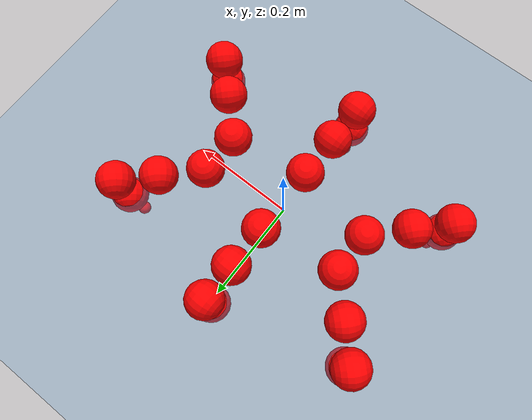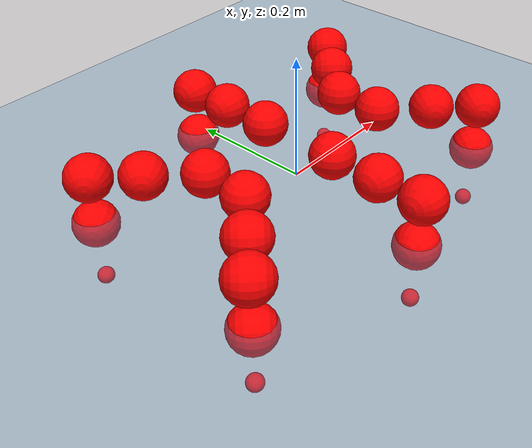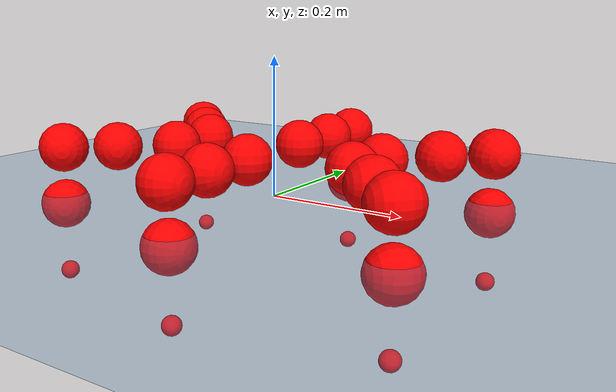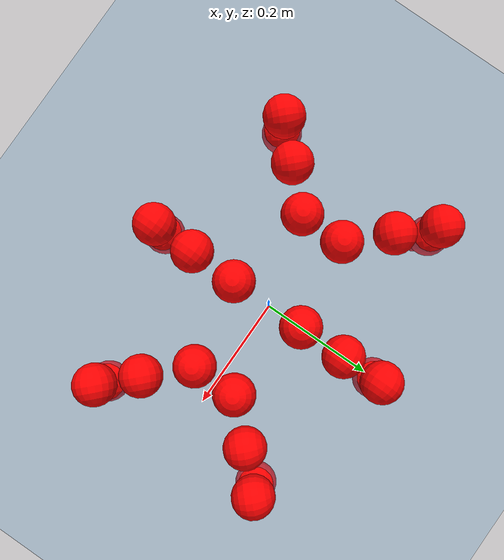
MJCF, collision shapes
<mujoco model="Golem">
  <compiler angle="radian" assetdir="assets" balanceinertia="true" inertiafromgeom="false"/>

  <option timestep="0.005" density="1.2" viscosity="2e-05"/>

  <size nkey="1"/>

  <visual>
    <quality shadowsize="8192"/>
    <map shadowclip="0.5"/>
  </visual>

  <default>
    <default class="/">
      <joint armature="0.01" damping="0.01" frictionloss="0.01"/>
      <geom contype="0" conaffinity="0" group="1" solref="-1000 -80"/>
      <site size="0.01 0.005 0.005" group="5"/>
      <general forcelimited="true" biastype="affine" gainprm="25" biasprm="0 -25 -0.5"/>
      <default class="visual">
        <geom type="mesh" group="2"/>
      </default>
      <default class="collision">
        <geom group="3"/>
      </default>
      <default class="foot">
        <geom size="0.01 0 0" condim="6" group="4" priority="1" solimp="0.015 1 0.01"/>
      </default>
      <default class="reward_collision_sphere">
        <geom group="5" rgba="1 0 0 1"/>
      </default>
    </default>
  </default>

  <asset>
    <texture type="skybox" colorspace="auto" name="//unnamed_texture_0" builtin="gradient" rgb1="0.95 0.95 0.95" rgb2="0.95 0.95 0.95" width="100" height="600"/>
    <texture type="2d" colorspace="auto" name="texplane" builtin="checker" rgb1="0.345 0.575 0.748" rgb2="0.345 0.575 0.748" markrgb="1 1 1" width="512" height="512"/>
    <material name="MatPlane" class="/" texture="texplane" texuniform="true" texrepeat="2 2" specular="0.9"/>
    <mesh name="body" class="/" file="body.stl" scale="0.001 0.001 0.001"/>
    <mesh name="coxa" class="/" file="coxa.stl" scale="0.001 0.001 0.001"/>
    <mesh name="femur" class="/" file="femur.stl" scale="0.001 0.001 0.001"/>
    <mesh name="tibia" class="/" file="tibia.stl" scale="0.001 0.001 0.001"/>
    <mesh name="tarsus" class="/" file="tarsus.stl" scale="0.001 0.001 0.001"/>
  </asset>

  <worldbody>
    <geom name="floor" class="/" size="100 100 0.125" type="plane" group="0" material="MatPlane"/>
    <light name="toplight_shadow" class="/" pos="0 0 5" dir="0.0990148 0.0990148 -0.990148" type="directional" ambient="0.04 0.04 0.04" diffuse="0.55 0.55 0.55" specular="0.12 0.12 0.12"/>
    <light name="toplight_fill" class="/" pos="0 0 5" dir="0.0990148 0.0990148 -0.990148" type="directional" castshadow="false" ambient="0.04 0.04 0.04" diffuse="0.3 0.3 0.3" specular="0.08 0.08 0.08"/>
    <body name="trunk" pos="1.18273e-05 0.000141534 -0.000372618" quat="1 0.000647228 -0.000106787 0.000187276">
      <inertial pos="-0.000494852 0.00067888 -0.00361944" quat="0.999987 0.0018328 -0.00295791 0.00383203" mass="2.6281" diaginertia="0.00854844 0.00185605 0.0105682"/>
      <joint name="//unnamed_joint_0" type="free"/>
      <geom name="//unnamed_geom_1" class="/" pos="0 0 0.0647077" quat="1 0 0 0" type="mesh" rgba="0.9 0.9 0.9 1" mesh="body"/>
      <site name="imu" class="/" pos="0.13018 0.00764583 0.11307" size="0.00896745"/>
      <camera name="track" class="/" pos="0 -1.42414 0" quat="0.707107 0.707107 0 0" mode="trackcom"/>
      <camera name="ego_camera" class="/" pos="0.125724 0 0.101106" quat="-0.5 -0.5 0.5 0.5"/>
      <body name="coxa_RR" pos="-0.172254 -0.0594421 0.0657721" quat="0.382612 -0.000550335 0.00110564 -0.923908">
        <inertial pos="0.00107469 -0.00102111 0.000471338" quat="0.999992 0.000956191 -0.00201362 -0.00339438" mass="0.149041" diaginertia="0.00866214 0.00189675 0.0110201"/>
        <joint name="coxa_joint_RR" class="/" pos="0 0 0" axis="-0.00619563 0.00545081 -0.999966" range="-3.15606 3.15957" armature="0.00879998" damping="0" frictionloss="0.00852175"/>
        <geom name="//unnamed_geom_2" class="/" type="mesh" rgba="0.2 0.2 0.2 1" mesh="coxa"/>
        <geom name="//unnamed_geom_3" class="reward_collision_sphere" size="0.0358698" pos="-0.0290133 0 0"/>
        <body name="femur_RR" pos="0.0572806 0.000811867 0.000769913" quat="0.500822 -0.500199 0.499293 0.499684">
          <inertial pos="8.76149e-05 0.00222623 -0.000280585" quat="0.999999 -0.000404148 0.00123647 0.000248553" mass="0.14192" diaginertia="0.00827097 0.00180444 0.0103457"/>
          <joint name="femur_joint_RR" class="/" pos="0 0 0" axis="0.000306942 0.000788001 -1" range="-3.16012 3.15982" armature="0.00966143" damping="0" frictionloss="0.00902133"/>
          <geom name="//unnamed_geom_4" class="/" type="mesh" rgba="0.9 0.9 0.9 1" mesh="femur"/>
          <geom name="//unnamed_geom_5" class="reward_collision_sphere" size="0.0358698"/>
          <body name="tibia_RR" pos="-0.000681216 -0.0780202 -0.000420783" quat="-7.47264e-06 1 8.93651e-05 -4.61859e-06">
            <inertial pos="0.00040319 0.00227047 -0.000235363" quat="1 0.00013814 -2.94188e-05 3.7341e-06" mass="0.142469" diaginertia="0.0083298 0.00181638 0.0103825"/>
            <joint name="tibia_joint_RR" class="/" pos="0 0 0" axis="-0.0102454 -0.00344578 0.999942" range="-3.09688 3.13016" armature="0.0090407" damping="0.00166878" frictionloss="0.0100778"/>
            <geom name="//unnamed_geom_6" class="/" type="mesh" rgba="0.2 0.2 0.2 1" mesh="tibia"/>
            <geom name="//unnamed_geom_7" class="reward_collision_sphere" size="0.0358698"/>
            <body name="tarsus_RR" pos="0.0841393 0.00149601 -0.00229347" quat="1 4.17968e-05 -1.29507e-05 7.45337e-05">
              <inertial pos="0.0573807 0.000602671 0.000759488" quat="0.502198 0.498684 0.499537 0.499574" mass="0.140804" diaginertia="0.00824445 0.00180976 0.0106393"/>
              <joint name="tarsus_joint_RR" class="/" pos="0 0 0" axis="0.00356371 0.00202738 0.999992" range="-3.13515 3.12779" armature="0.00933585" damping="0.00383098" frictionloss="0.00907531"/>
              <geom name="//unnamed_geom_8" class="/" type="mesh" rgba="0.9 0.9 0.9 1" mesh="tarsus"/>
              <geom name="foot_1" class="foot" size="0.00842673" pos="0.108316 0 0" quat="0 -0.707107 0 0.707107"/>
              <geom name="//unnamed_geom_10" class="reward_collision_sphere" size="0.0358698"/>
              <geom name="//unnamed_geom_11" class="reward_collision_sphere" size="0.0134512" pos="0.103964 0 0"/>
              <site name="foot_1" class="foot" pos="0.108316 0 0" quat="0 -0.707107 0 0.707107" size="0.00896745"/>
            </body>
          </body>
        </body>
      </body>
      <body name="coxa_RM" pos="0.00203694 -0.0970946 0.0656549" quat="0.707168 -0.000116951 6.2919e-05 -0.707046">
        <inertial pos="0.00061088 6.27812e-05 -0.0012913" quat="0.999929 0.00580093 0.00747773 -0.00725459" mass="0.149502" diaginertia="0.0087679 0.00193716 0.0110347"/>
        <joint name="coxa_joint_RM" class="/" pos="0 0 0" axis="-0.00275376 -0.00949688 -0.999951" range="-3.13846 3.14582" armature="0.00938413" damping="0.0127715" frictionloss="0.00916647"/>
        <geom name="//unnamed_geom_12" class="/" type="mesh" rgba="0.2 0.2 0.2 1" mesh="coxa"/>
        <geom name="//unnamed_geom_13" class="reward_collision_sphere" size="0.0358698" pos="-0.0290133 0 0"/>
        <body name="femur_RM" pos="0.0546731 -0.00128679 0.000266237" quat="0.500064 -0.499939 0.499983 0.500014">
          <inertial pos="-0.000196322 0.00060795 -0.000456958" quat="1 -3.03704e-05 -0.000523503 -0.000244203" mass="0.143882" diaginertia="0.00829614 0.00183211 0.0106493"/>
          <joint name="femur_joint_RM" class="/" pos="0 0 0" axis="0.000164645 0.000284514 -1" range="-3.11223 3.12846" armature="0.00928044" damping="0.0081966" frictionloss="0.00980596"/>
          <geom name="//unnamed_geom_14" class="/" type="mesh" rgba="0.9 0.9 0.9 1" mesh="femur"/>
          <geom name="//unnamed_geom_15" class="reward_collision_sphere" size="0.0358698"/>
          <body name="tibia_RM" pos="0.000363044 -0.0761069 -0.00109227" quat="-1.39651e-05 1 9.6577e-05 -0.000132147">
            <inertial pos="0.000696345 0.000224358 0.00120048" quat="0.999997 0.0020156 -0.000604836 -0.000800103" mass="0.148146" diaginertia="0.00845504 0.00183661 0.0106371"/>
            <joint name="tibia_joint_RM" class="/" pos="0 0 0" axis="0.00674226 -0.00615418 0.999958" range="-3.15746 3.15179" armature="0.00799205" damping="0.0103359" frictionloss="0.00990749"/>
            <geom name="//unnamed_geom_16" class="/" type="mesh" rgba="0.2 0.2 0.2 1" mesh="tibia"/>
            <geom name="//unnamed_geom_17" class="reward_collision_sphere" size="0.0358698"/>
            <body name="tarsus_RM" pos="0.0821184 -0.00216545 -9.76008e-05" quat="1 0.000210067 -0.000244293 -0.000157976">
              <inertial pos="0.0577148 0.000798121 -1.05047e-05" quat="0.500397 0.499631 0.499421 0.50055" mass="0.149978" diaginertia="0.00862489 0.00187815 0.010808"/>
              <joint name="tarsus_joint_RM" class="/" pos="0 0 0" axis="-0.00284349 -0.00360045 0.999989" stiffness="1.39358e-05" range="-3.15952 3.14861" armature="0.00927752" damping="0.00544431" frictionloss="0.00864499"/>
              <geom name="//unnamed_geom_18" class="/" type="mesh" rgba="0.9 0.9 0.9 1" mesh="tarsus"/>
              <geom name="foot_2" class="foot" size="0.00889947" pos="0.108316 0 0" quat="0 -0.707107 0 0.707107"/>
              <geom name="//unnamed_geom_20" class="reward_collision_sphere" size="0.0358698"/>
              <geom name="//unnamed_geom_21" class="reward_collision_sphere" size="0.0134512" pos="0.103964 0 0"/>
              <site name="foot_2" class="foot" pos="0.108316 0 0" quat="0 -0.707107 0 0.707107" size="0.00896745"/>
            </body>
          </body>
        </body>
      </body>
      <body name="coxa_RF" pos="0.171108 -0.0615076 0.0666689" quat="0.923859 0.000137548 0.000406658 -0.382733">
        <inertial pos="-0.00204052 0.00064202 -0.000918817" quat="0.999999 -0.000455232 0.000581722 -0.000821514" mass="0.144393" diaginertia="0.00873573 0.0018938 0.0108919"/>
        <joint name="coxa_joint_RF" class="/" pos="0 0 0" axis="0.00462627 0.00756428 -0.999961" range="-3.12832 3.13238" armature="0.00905056" damping="0.0205535" frictionloss="0.00983208"/>
        <geom name="//unnamed_geom_22" class="/" type="mesh" rgba="0.2 0.2 0.2 1" mesh="coxa"/>
        <geom name="//unnamed_geom_23" class="reward_collision_sphere" size="0.0358698" pos="-0.0290133 0 0"/>
        <body name="femur_RF" pos="0.0587546 6.21547e-05 0.000544627" quat="0.499857 -0.500445 0.499382 0.500316">
          <inertial pos="0.000282342 -0.000323549 0.000942497" quat="0.999999 6.48765e-05 0.000948047 0.000888956" mass="0.145568" diaginertia="0.00841374 0.00181816 0.0105449"/>
          <joint name="femur_joint_RF" class="/" pos="0 0 0" axis="-0.00494985 0.00163268 -0.999986" range="-3.15376 3.14218" armature="0.00933189" damping="0.0105143" frictionloss="0.00910926"/>
          <geom name="//unnamed_geom_24" class="/" type="mesh" rgba="0.9 0.9 0.9 1" mesh="femur"/>
          <geom name="//unnamed_geom_25" class="reward_collision_sphere" size="0.0358698"/>
          <body name="tibia_RF" pos="0.00216615 -0.0765846 0.000743828" quat="0.000536091 1 -9.84898e-05 -1.27358e-05">
            <inertial pos="-0.000164488 -0.00179358 -0.00141177" quat="0.999956 -0.00596291 -0.00531439 0.00488904" mass="0.1384" diaginertia="0.00830397 0.00178664 0.0105368"/>
            <joint name="tibia_joint_RF" class="/" pos="0 0 0" axis="0.00719713 -0.00429357 0.999965" stiffness="0.00184207" range="-3.12879 3.14459" armature="0.0091347" damping="0" frictionloss="0.00894644"/>
            <geom name="//unnamed_geom_26" class="/" type="mesh" rgba="0.2 0.2 0.2 1" mesh="tibia"/>
            <geom name="//unnamed_geom_27" class="reward_collision_sphere" size="0.0358698"/>
            <body name="tarsus_RF" pos="0.0819143 0.000332473 -0.00123215" quat="1 -2.30784e-05 3.46127e-05 1.70224e-05">
              <inertial pos="0.0563154 -0.000228973 -0.000511823" quat="0.500035 0.50412 0.498175 0.497644" mass="0.146264" diaginertia="0.00859987 0.00181027 0.0106496"/>
              <joint name="tarsus_joint_RF" class="/" pos="0 0 0" axis="-0.0147146 0.00187718 0.99989" range="-3.14172 3.15164" armature="0.00928037" damping="0.00787779" frictionloss="0.00890531"/>
              <geom name="//unnamed_geom_28" class="/" type="mesh" rgba="0.9 0.9 0.9 1" mesh="tarsus"/>
              <geom name="foot_3" class="foot" size="0.00866038" pos="0.108316 0 0" quat="0 -0.707107 0 0.707107"/>
              <geom name="//unnamed_geom_30" class="reward_collision_sphere" size="0.0358698"/>
              <geom name="//unnamed_geom_31" class="reward_collision_sphere" size="0.0134512" pos="0.103964 0 0"/>
              <site name="foot_3" class="foot" pos="0.108316 0 0" quat="0 -0.707107 0 0.707107" size="0.00896745"/>
            </body>
          </body>
        </body>
      </body>
      <body name="coxa_LR" pos="-0.171596 0.0603421 0.0665584" quat="0.382857 0.00026387 0.000871936 0.923807">
        <inertial pos="0.000659159 0.00117983 -0.00132117" quat="0.999997 -0.00226894 -0.000593359 0.000820281" mass="0.142674" diaginertia="0.00852969 0.00181011 0.0105021"/>
        <joint name="coxa_joint_LR" class="/" pos="0 0 0" axis="0.0101888 0.000181334 -0.999948" range="-3.12478 3.1786" armature="0.00902275" damping="0.0102075" frictionloss="0.00933638"/>
        <geom name="//unnamed_geom_32" class="/" type="mesh" rgba="0.2 0.2 0.2 1" mesh="coxa"/>
        <geom name="//unnamed_geom_33" class="reward_collision_sphere" size="0.0358698" pos="-0.0290133 0 0"/>
        <body name="femur_LR" pos="0.0587092 -0.00128171 -0.000705243" quat="0.500158 -0.499743 0.499876 0.500223">
          <inertial pos="0.000347312 0.000707156 -0.00113328" quat="0.999939 0.00824921 0.00726902 0.0010326" mass="0.146857" diaginertia="0.00865442 0.00187209 0.0106148"/>
          <joint name="femur_joint_LR" class="/" pos="0 0 0" axis="0.0125573 -0.00498963 0.999909" range="-3.12815 3.12046" armature="0.0100423" damping="0.00598416" frictionloss="0.00891259"/>
          <geom name="//unnamed_geom_34" class="/" type="mesh" rgba="0.9 0.9 0.9 1" mesh="femur"/>
          <geom name="//unnamed_geom_35" class="reward_collision_sphere" size="0.0358698"/>
          <body name="tibia_LR" pos="0.00107253 -0.0777138 -0.00221582" quat="-0.000342907 1 0.00022709 0.000261837">
            <inertial pos="0.000219209 -0.000888951 0.00133578" quat="0.999994 0.000527369 0.00285466 -0.00164847" mass="0.146342" diaginertia="0.0083379 0.00179899 0.0105875"/>
            <joint name="tibia_joint_LR" class="/" pos="0 0 0" axis="0.00209724 -0.000731416 -0.999998" range="-3.09585 3.15701" armature="0.00835372" damping="0.00743548" frictionloss="0.00892993"/>
            <geom name="//unnamed_geom_36" class="/" type="mesh" rgba="0.2 0.2 0.2 1" mesh="tibia"/>
            <geom name="//unnamed_geom_37" class="reward_collision_sphere" size="0.0358698"/>
            <body name="tarsus_LR" pos="0.0833198 0.000950582 0.00149547" quat="1 2.31359e-05 -1.75863e-05 9.70822e-06">
              <inertial pos="0.0589758 -0.00137167 -0.000262305" quat="0.500037 0.500086 0.499946 0.499931" mass="0.142397" diaginertia="0.00856389 0.00191156 0.0106621"/>
              <joint name="tarsus_joint_LR" class="/" pos="0 0 0" axis="-0.000662939 0.00424868 -0.999991" range="-3.12631 3.14194" armature="0.00891353" damping="0.00130458" frictionloss="0.00895142"/>
              <geom name="//unnamed_geom_38" class="/" type="mesh" rgba="0.9 0.9 0.9 1" mesh="tarsus"/>
              <geom name="foot_4" class="foot" size="0.00895969" pos="0.108316 0 0" quat="0.707107 0 -0.707107 0"/>
              <geom name="//unnamed_geom_40" class="reward_collision_sphere" size="0.0358698"/>
              <geom name="//unnamed_geom_41" class="reward_collision_sphere" size="0.0134512" pos="0.103964 0 0"/>
              <site name="foot_4" class="foot" pos="0.108316 0 0" quat="0.707107 0 -0.707107 0" size="0.00896745"/>
            </body>
          </body>
        </body>
      </body>
      <body name="coxa_LM" pos="0.00126329 0.0929853 0.0672246" quat="0.707562 0.000203152 0.000282794 0.706651">
        <inertial pos="0.000186395 1.25847e-05 -0.00146933" quat="0.999999 4.81537e-05 0.00094628 0.00137485" mass="0.144131" diaginertia="0.00828896 0.00181634 0.0104144"/>
        <joint name="coxa_joint_LM" class="/" pos="0 0 0" axis="-0.000331404 -7.43383e-05 -1" range="-3.1318 3.13335" armature="0.00849934" damping="0.00326946" frictionloss="0.00892325"/>
        <geom name="//unnamed_geom_42" class="/" type="mesh" rgba="0.2 0.2 0.2 1" mesh="coxa"/>
        <geom name="//unnamed_geom_43" class="reward_collision_sphere" size="0.0358698" pos="-0.0290133 0 0"/>
        <body name="femur_LM" pos="0.0543215 0.000261736 -0.000109872" quat="0.500145 -0.499901 0.499916 0.500037">
          <inertial pos="-0.000908987 -0.000220526 -0.00252992" quat="0.999987 0.00019789 -0.00466591 -0.00182358" mass="0.144995" diaginertia="0.00852885 0.00185128 0.0106772"/>
          <joint name="femur_joint_LM" class="/" pos="0 0 0" axis="-0.00039726 -0.00309078 0.999995" range="-3.15668 3.09182" armature="0.00891836" damping="0" frictionloss="0.00827549"/>
          <geom name="//unnamed_geom_44" class="/" type="mesh" rgba="0.9 0.9 0.9 1" mesh="femur"/>
          <geom name="//unnamed_geom_45" class="reward_collision_sphere" size="0.0358698"/>
          <body name="tibia_LM" pos="0.000355984 -0.0741183 0.00107387" quat="0.000140963 1 -0.000277239 -9.64121e-05">
            <inertial pos="-0.000781974 -0.000213807 3.93262e-06" quat="1 -0.000758404 -0.000243887 -0.000550488" mass="0.139446" diaginertia="0.00821061 0.00177602 0.0102344"/>
            <joint name="tibia_joint_LM" class="/" pos="0 0 0" axis="-0.00285422 -0.00824368 -0.999962" range="-3.11197 3.14741" armature="0.0101253" damping="0" frictionloss="0.00957785"/>
            <geom name="//unnamed_geom_46" class="/" type="mesh" rgba="0.2 0.2 0.2 1" mesh="tibia"/>
            <geom name="//unnamed_geom_47" class="reward_collision_sphere" size="0.0358698"/>
            <body name="tarsus_LM" pos="0.0862255 0.000122431 -0.00088295" quat="1 4.64672e-06 3.9648e-05 -0.000123171">
              <inertial pos="0.0589408 -0.00162405 -0.000388603" quat="0.500198 0.498664 0.501473 0.499661" mass="0.140011" diaginertia="0.00829193 0.00171856 0.0103682"/>
              <joint name="tarsus_joint_LM" class="/" pos="0 0 0" axis="-0.000112901 0.000347375 -1" stiffness="0.00863132" range="-3.13744 3.13713" armature="0.00908499" damping="0.0200783" frictionloss="0.0100223"/>
              <geom name="//unnamed_geom_48" class="/" type="mesh" rgba="0.9 0.9 0.9 1" mesh="tarsus"/>
              <geom name="foot_5" class="foot" size="0.00909896" pos="0.108316 0 0" quat="0.707107 0 -0.707107 0"/>
              <geom name="//unnamed_geom_50" class="reward_collision_sphere" size="0.0358698"/>
              <geom name="//unnamed_geom_51" class="reward_collision_sphere" size="0.0134512" pos="0.103964 0 0"/>
              <site name="foot_5" class="foot" pos="0.108316 0 0" quat="0.707107 0 -0.707107 0" size="0.00896745"/>
            </body>
          </body>
        </body>
      </body>
      <body name="coxa_LF" pos="0.172632 0.0580903 0.0657802" quat="0.923974 2.14156e-05 -0.000254463 0.382454">
        <inertial pos="-0.00188379 -0.00237127 -0.000483949" quat="0.999987 -0.0028705 -0.00177762 -0.00372345" mass="0.14223" diaginertia="0.00832558 0.00174677 0.0105433"/>
        <joint name="coxa_joint_LF" class="/" pos="0 0 0" axis="-0.00522454 -0.00499277 -0.999974" range="-3.13679 3.13907" armature="0.00841794" damping="0.000605086" frictionloss="0.00849476"/>
        <geom name="//unnamed_geom_52" class="/" type="mesh" rgba="0.2 0.2 0.2 1" mesh="coxa"/>
        <geom name="//unnamed_geom_53" class="reward_collision_sphere" size="0.0358698" pos="-0.0290133 0 0"/>
        <body name="femur_LF" pos="0.0574279 0.0024656 0.000564178" quat="0.49977 -0.500201 0.499877 0.500152">
          <inertial pos="0.000186534 -0.000104731 -0.00101927" quat="1 0.000168624 -0.00046896 0.000243387" mass="0.139216" diaginertia="0.00803986 0.00179275 0.0103362"/>
          <joint name="femur_joint_LF" class="/" pos="0 0 0" axis="-0.00828137 -0.00755263 0.999937" range="-3.12812 3.16363" armature="0.00875563" damping="0.00669317" frictionloss="0.00902777"/>
          <geom name="//unnamed_geom_54" class="/" type="mesh" rgba="0.9 0.9 0.9 1" mesh="femur"/>
          <geom name="//unnamed_geom_55" class="reward_collision_sphere" size="0.0358698"/>
          <body name="tibia_LF" pos="-0.000399336 -0.0781832 -0.000570267" quat="-6.61688e-05 1 -5.58616e-05 4.92044e-05">
            <inertial pos="0.00010987 0.00212951 0.000378342" quat="0.999996 -0.000613074 -0.000403327 -0.00263898" mass="0.146117" diaginertia="0.00848138 0.00184464 0.0106677"/>
            <joint name="tibia_joint_LF" class="/" pos="0 0 0" axis="-0.00174114 -0.00160698 -0.999997" range="-3.12863 3.11437" armature="0.00945414" damping="0.00148145" frictionloss="0.00854057"/>
            <geom name="//unnamed_geom_56" class="/" type="mesh" rgba="0.2 0.2 0.2 1" mesh="tibia"/>
            <geom name="//unnamed_geom_57" class="reward_collision_sphere" size="0.0358698"/>
            <body name="tarsus_LF" pos="0.0861559 -0.000383091 -0.00212542" quat="1 7.02996e-06 -1.71016e-05 -3.59618e-05">
              <inertial pos="0.0569098 -0.000629708 0.000981879" quat="0.492618 0.500478 0.497136 0.509612" mass="0.145397" diaginertia="0.00849391 0.00182045 0.0104804"/>
              <joint name="tarsus_joint_LF" class="/" pos="0 0 0" axis="-0.0100686 0.00518263 -0.999936" stiffness="0.0300663" range="-3.15117 3.12256" armature="0.00892225" damping="0.0297804" frictionloss="0.00926377"/>
              <geom name="//unnamed_geom_58" class="/" type="mesh" rgba="0.9 0.9 0.9 1" mesh="tarsus"/>
              <geom name="foot_6" class="foot" size="0.00871602" pos="0.108316 0 0" quat="0.707107 0 -0.707107 0"/>
              <geom name="//unnamed_geom_60" class="reward_collision_sphere" size="0.0358698"/>
              <geom name="//unnamed_geom_61" class="reward_collision_sphere" size="0.0134512" pos="0.103964 0 0"/>
              <site name="foot_6" class="foot" pos="0.108316 0 0" quat="0.707107 0 -0.707107 0" size="0.00896745"/>
            </body>
          </body>
        </body>
      </body>
    </body>
  </worldbody>

  <contact>
    <pair class="/" geom1="floor" geom2="foot_1" name="//unnamed_contact_0"/>
    <pair class="/" geom1="floor" geom2="foot_2" name="//unnamed_contact_1"/>
    <pair class="/" geom1="floor" geom2="foot_3" name="//unnamed_contact_2"/>
    <pair class="/" geom1="floor" geom2="foot_4" name="//unnamed_contact_3"/>
    <pair class="/" geom1="floor" geom2="foot_5" name="//unnamed_contact_4"/>
    <pair class="/" geom1="floor" geom2="foot_6" name="//unnamed_contact_5"/>
  </contact>

  <actuator>
    <general name="coxa_joint_RR" class="/" joint="coxa_joint_RR" forcerange="-6.57206 6.57206" gainprm="21.7117" biasprm="0 -21.7117 -0.453207"/>
    <general name="femur_joint_RR" class="/" joint="femur_joint_RR" forcerange="-6.31669 6.31669" gainprm="21.7117" biasprm="0 -21.7117 -0.453207"/>
    <general name="tibia_joint_RR" class="/" joint="tibia_joint_RR" forcerange="-6.55608 6.55608" gainprm="21.7117" biasprm="0 -21.7117 -0.453207"/>
    <general name="tarsus_joint_RR" class="/" joint="tarsus_joint_RR" forcerange="-6.88231 6.88231" gainprm="21.7117" biasprm="0 -21.7117 -0.453207"/>
    <general name="coxa_joint_RM" class="/" joint="coxa_joint_RM" forcerange="-6.77819 6.77819" gainprm="21.7117" biasprm="0 -21.7117 -0.453207"/>
    <general name="femur_joint_RM" class="/" joint="femur_joint_RM" forcerange="-6.89343 6.89343" gainprm="21.7117" biasprm="0 -21.7117 -0.453207"/>
    <general name="tibia_joint_RM" class="/" joint="tibia_joint_RM" forcerange="-6.30029 6.30029" gainprm="21.7117" biasprm="0 -21.7117 -0.453207"/>
    <general name="tarsus_joint_RM" class="/" joint="tarsus_joint_RM" forcerange="-6.34148 6.34148" gainprm="21.7117" biasprm="0 -21.7117 -0.453207"/>
    <general name="coxa_joint_RF" class="/" joint="coxa_joint_RF" forcerange="-6.21586 6.21586" gainprm="21.7117" biasprm="0 -21.7117 -0.453207"/>
    <general name="femur_joint_RF" class="/" joint="femur_joint_RF" forcerange="-6.57809 6.57809" gainprm="21.7117" biasprm="0 -21.7117 -0.453207"/>
    <general name="tibia_joint_RF" class="/" joint="tibia_joint_RF" forcerange="-6.29586 6.29586" gainprm="21.7117" biasprm="0 -21.7117 -0.453207"/>
    <general name="tarsus_joint_RF" class="/" joint="tarsus_joint_RF" forcerange="-6.51693 6.51693" gainprm="21.7117" biasprm="0 -21.7117 -0.453207"/>
    <general name="coxa_joint_LR" class="/" joint="coxa_joint_LR" forcerange="-6.47978 6.47978" gainprm="21.7117" biasprm="0 -21.7117 -0.453207"/>
    <general name="femur_joint_LR" class="/" joint="femur_joint_LR" forcerange="-6.57545 6.57545" gainprm="21.7117" biasprm="0 -21.7117 -0.453207"/>
    <general name="tibia_joint_LR" class="/" joint="tibia_joint_LR" forcerange="-6.42781 6.42781" gainprm="21.7117" biasprm="0 -21.7117 -0.453207"/>
    <general name="tarsus_joint_LR" class="/" joint="tarsus_joint_LR" forcerange="-6.63995 6.63995" gainprm="21.7117" biasprm="0 -21.7117 -0.453207"/>
    <general name="coxa_joint_LM" class="/" joint="coxa_joint_LM" forcerange="-6.69194 6.69194" gainprm="21.7117" biasprm="0 -21.7117 -0.453207"/>
    <general name="femur_joint_LM" class="/" joint="femur_joint_LM" forcerange="-6.63966 6.63966" gainprm="21.7117" biasprm="0 -21.7117 -0.453207"/>
    <general name="tibia_joint_LM" class="/" joint="tibia_joint_LM" forcerange="-6.57046 6.57046" gainprm="21.7117" biasprm="0 -21.7117 -0.453207"/>
    <general name="tarsus_joint_LM" class="/" joint="tarsus_joint_LM" forcerange="-6.32492 6.32492" gainprm="21.7117" biasprm="0 -21.7117 -0.453207"/>
    <general name="coxa_joint_LF" class="/" joint="coxa_joint_LF" forcerange="-6.63344 6.63344" gainprm="21.7117" biasprm="0 -21.7117 -0.453207"/>
    <general name="femur_joint_LF" class="/" joint="femur_joint_LF" forcerange="-6.54795 6.54795" gainprm="21.7117" biasprm="0 -21.7117 -0.453207"/>
    <general name="tibia_joint_LF" class="/" joint="tibia_joint_LF" forcerange="-6.51143 6.51143" gainprm="21.7117" biasprm="0 -21.7117 -0.453207"/>
    <general name="tarsus_joint_LF" class="/" joint="tarsus_joint_LF" forcerange="-6.59966 6.59966" gainprm="21.7117" biasprm="0 -21.7117 -0.453207"/>
  </actuator>

  <sensor>
    <gyro site="imu" name="imu_angular_velocity"/>
    <velocimeter site="imu" name="imu_linear_velocity"/>
    <framelinvel objtype="site" objname="foot_1" name="foot_1_global_linear_velocity"/>
    <framelinvel objtype="site" objname="foot_2" name="foot_2_global_linear_velocity"/>
    <framelinvel objtype="site" objname="foot_3" name="foot_3_global_linear_velocity"/>
    <framelinvel objtype="site" objname="foot_4" name="foot_4_global_linear_velocity"/>
    <framelinvel objtype="site" objname="foot_5" name="foot_5_global_linear_velocity"/>
    <framelinvel objtype="site" objname="foot_6" name="foot_6_global_linear_velocity"/>
  </sensor>

  <keyframe>
    <key name="home" qpos="0 0 0.1457 1 0 0 0 0 0 0 0 0 0 0 0 0 0 0 0 0 0 0 0 0 0 0 0 0 0 0 0"/>
  </keyframe>
</mujoco>
